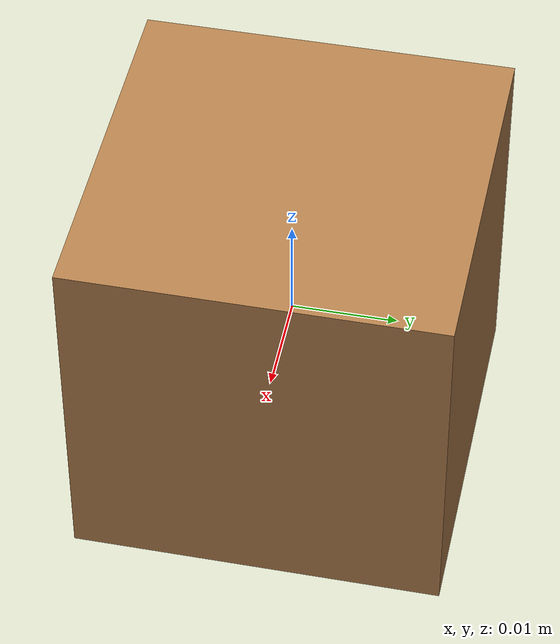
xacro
<?xml version="1.0" encoding="utf-8"?>

<robot name="cube" xmlns:xacro="http://www.ros.org/wiki/xacro">
    <link name="my_cube">
        <inertial>
          <mass value="0.05" />
          <inertia  ixx="1.02E-5" ixy="0.0"  ixz="0.0"  iyy="1.02E-5"  iyz="0.0"  izz="1.02E-5" />
        </inertial>
        <visual>
          <geometry>
            <box size="0.035 0.035 0.035"/>
          </geometry>
        </visual>
        <collision>
          <geometry>
            <box size="0.035 0.035 0.035"/>
          </geometry>
          <surface>
            <bounce />
            <friction>
              <ode>
                <mu>1.0</mu>
                <mu2>1.0</mu2>
              </ode>
            </friction>
            <contact>
              <ode>
                <kp>10000000.0</kp>
                <kd>1.0</kd>
                <min_depth>0.0</min_depth>
                <max_vel>0.0</max_vel>
              </ode>
            </contact>
          </surface>
        </collision>
      </link>
      <gazebo reference="my_cube">
        <material>Gazebo/Wood</material>
      </gazebo>
      <gazebo>
        <static>false</static>
      </gazebo>
  </robot>
